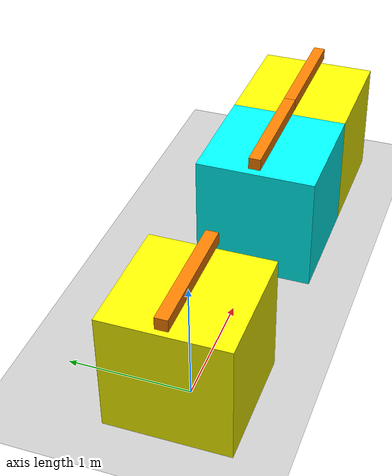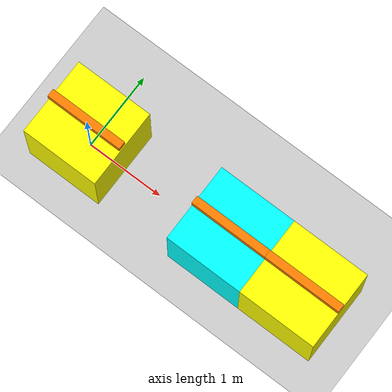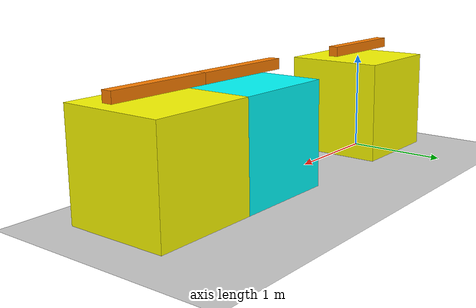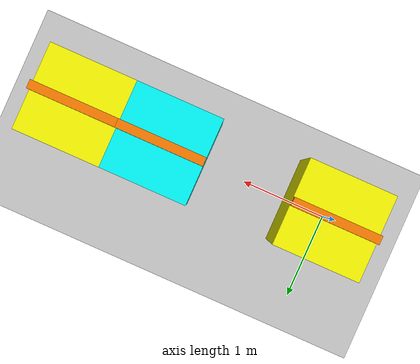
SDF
<?xml version="1.0" ?>

<sdf version="1.9">
  <world name="test_nested_model">
    <physics name="1ms" type="ignore">
      <max_step_size>0.001</max_step_size>
      <real_time_factor>1.0</real_time_factor>
    </physics>

    <plugin filename="gz-sim-physics-system"
      name="gz::sim::systems::Physics">
    </plugin>
    <plugin filename="gz-sim-user-commands-system"
      name="gz::sim::systems::UserCommands">
    </plugin>
    <plugin filename="gz-sim-scene-broadcaster-system"
      name="gz::sim::systems::SceneBroadcaster">
    </plugin>

    <scene>
      <ambient>1.0 1.0 1.0</ambient>
      <background>0.8 0.8 0.8</background>
    </scene>

    <light type="directional" name="sun">
      <cast_shadows>true</cast_shadows>
      <pose>0 0 10 0 0 0</pose>
      <diffuse>0.8 0.8 0.8 1</diffuse>
      <specular>0.8 0.8 0.8 1</specular>
      <attenuation>
        <range>1000</range>
        <constant>0.9</constant>
        <linear>0.01</linear>
        <quadratic>0.001</quadratic>
      </attenuation>
      <direction>-0.5 0.1 -0.9</direction>
    </light>

    <model name="ground_plane">
      <static>true</static>
      <link name="link">
        <collision name="collision">
          <geometry>
            <plane>
              <normal>0 0 1</normal>
              <size>100 100</size>
            </plane>
          </geometry>
        </collision>
        <visual name="visual">
          <geometry>
            <plane>
              <normal>0 0 1</normal>
              <size>100 100</size>
            </plane>
          </geometry>
          <material>
            <ambient>0.8 0.8 0.8 1</ambient>
            <diffuse>0.8 0.8 0.8 1</diffuse>
            <specular>0.8 0.8 0.8 1</specular>
          </material>
        </visual>
      </link>
    </model>

    <!-- model with a position controlled joint -->
    <model name="model1">
      <pose>0 0 0.5 0 0 0</pose>
      <link name="base1_link">
        <inertial>
          <mass>1.0</mass>
          <inertia>
            <ixx>0.166666667</ixx>
            <ixy>0.00</ixy>
            <ixz>0.00</ixz>
            <iyy>0.166666667</iyy>
            <iyz>0.00</iyz>
            <izz>0.166666667</izz>
          </inertia>
        </inertial>
        <visual name="visual">
          <geometry>
            <box>
              <size>1 1 1</size>
            </box>
          </geometry>
          <material>
            <ambient>1 1 0</ambient>
            <diffuse>1 1 0</diffuse>
            <specular>0.1 0.1 0 1</specular>
          </material>
        </visual>
        <collision name="collision">
          <geometry>
            <box>
              <size>1 1 1</size>
            </box>
          </geometry>
        </collision>
      </link>
      <link name="rotor1_link">
        <pose>0 0 0.6 0 0 0</pose>
        <inertial>
          <mass>0.01</mass>
          <inertia>
            <ixx>1.66667E-05</ixx>
            <ixy>0.00</ixy>
            <ixz>0.00</ixz>
            <iyy>0.000841667</iyy>
            <iyz>0.00</iyz>
            <izz>0.000841667</izz>
          </inertia>
        </inertial>
        <visual name="visual">
          <geometry>
            <box>
              <size>1 0.1 0.1</size>
            </box>
          </geometry>
          <material>
            <ambient>1 0.5 0</ambient>
            <diffuse>1 0.5 0</diffuse>
            <specular>0.1 0.1 0 1</specular>
          </material>
        </visual>
        <collision name="collision">
          <geometry>
            <box>
              <size>1 0.1 0.1</size>
            </box>
          </geometry>
        </collision>
      </link>
      <joint name="rotor1_joint" type="revolute">
        <parent>base1_link</parent>
        <child>rotor1_link</child>
        <axis>
          <dynamics>
            <damping>0.5</damping>
          </dynamics>
          <limit>
            <lower>-3.14159265</lower>
            <upper>3.14159265</upper>
          </limit>
          <xyz>0 0 1</xyz>
        </axis>
      </joint>
      <plugin
        filename="gz-sim-joint-position-controller-system"
        name="gz::sim::systems::JointPositionController">
        <joint_name>rotor1_joint</joint_name>
        <topic>rotor1_cmd</topic>
        <p_gain>2</p_gain>
      </plugin>
    </model>

    <!-- nested model with two position controlled joints -->
    <model name="model3">
      <pose>2 0 0.5 0 0 0</pose>
      <link name="base3_link">
        <inertial>
          <mass>1.0</mass>
          <inertia>
            <ixx>0.166666667</ixx>
            <ixy>0.00</ixy>
            <ixz>0.00</ixz>
            <iyy>0.166666667</iyy>
            <iyz>0.00</iyz>
            <izz>0.166666667</izz>
          </inertia>
        </inertial>
        <visual name="visual">
          <geometry>
            <box>
              <size>1 1 1</size>
            </box>
          </geometry>
          <material>
            <ambient>0 1 1</ambient>
            <diffuse>0 1 1</diffuse>
            <specular>0.1 0.1 0 1</specular>
          </material>
        </visual>
        <collision name="collision">
          <geometry>
            <box>
              <size>1 1 1</size>
            </box>
          </geometry>
        </collision>
      </link>
      <link name="rotor3_link">
        <pose>0 0 0.6 0 0 0</pose>
        <inertial>
          <mass>0.01</mass>
          <inertia>
            <ixx>1.66667E-05</ixx>
            <ixy>0.00</ixy>
            <ixz>0.00</ixz>
            <iyy>0.000841667</iyy>
            <iyz>0.00</iyz>
            <izz>0.000841667</izz>
          </inertia>
        </inertial>
        <visual name="visual">
          <geometry>
            <box>
              <size>1 0.1 0.1</size>
            </box>
          </geometry>
          <material>
            <ambient>1 0.5 0</ambient>
            <diffuse>1 0.5 0</diffuse>
            <specular>0.1 0.1 0 1</specular>
          </material>
        </visual>
        <collision name="collision">
          <geometry>
            <box>
              <size>1 0.1 0.1</size>
            </box>
          </geometry>
        </collision>
      </link>
      <joint name="rotor3_joint" type="revolute">
        <parent>base3_link</parent>
        <child>rotor3_link</child>
        <axis>
          <dynamics>
            <damping>0.5</damping>
          </dynamics>
          <limit>
            <lower>-3.14159265</lower>
            <upper>3.14159265</upper>
          </limit>
          <xyz>0 0 1</xyz>
        </axis>
      </joint>
      <plugin
        filename="gz-sim-joint-position-controller-system"
        name="gz::sim::systems::JointPositionController">
        <joint_name>rotor3_joint</joint_name>
        <topic>rotor3_cmd</topic>
        <p_gain>2</p_gain>
      </plugin>
      <model name="model2">
        <pose>1.0 0 0 0 0 0</pose>
        <link name="base2_link">
          <inertial>
            <mass>1.0</mass>
            <inertia>
              <ixx>0.166666667</ixx>
              <ixy>0.00</ixy>
              <ixz>0.00</ixz>
              <iyy>0.166666667</iyy>
              <iyz>0.00</iyz>
              <izz>0.166666667</izz>
            </inertia>
          </inertial>
          <visual name="visual">
            <geometry>
              <box>
                <size>1 1 1</size>
              </box>
            </geometry>
            <material>
              <ambient>1 1 0</ambient>
              <diffuse>1 1 0</diffuse>
              <specular>0.1 0.1 0 1</specular>
            </material>
          </visual>
          <collision name="collision">
            <geometry>
              <box>
                <size>1 1 1</size>
              </box>
            </geometry>
          </collision>
        </link>
        <link name="rotor2_link">
          <pose>0 0 0.6 0 0 0</pose>
          <inertial>
            <mass>0.01</mass>
            <inertia>
              <ixx>1.66667E-05</ixx>
              <ixy>0.00</ixy>
              <ixz>0.00</ixz>
              <iyy>0.000841667</iyy>
              <iyz>0.00</iyz>
              <izz>0.000841667</izz>
            </inertia>
          </inertial>
          <visual name="visual">
            <geometry>
              <box>
                <size>1 0.1 0.1</size>
              </box>
            </geometry>
            <material>
              <ambient>1 0.5 0</ambient>
              <diffuse>1 0.5 0</diffuse>
              <specular>0.1 0.1 0 1</specular>
            </material>
          </visual>
          <collision name="collision">
            <geometry>
              <box>
                <size>1 0.1 0.1</size>
              </box>
            </geometry>
          </collision>
        </link>
        <joint name="rotor2_joint" type="revolute">
          <parent>base2_link</parent>
          <child>rotor2_link</child>
          <axis>
            <dynamics>
              <damping>0.5</damping>
            </dynamics>
            <limit>
              <lower>-3.14159265</lower>
              <upper>3.14159265</upper>
            </limit>
            <xyz>0 0 1</xyz>
          </axis>
        </joint>
        <plugin
          filename="gz-sim-joint-position-controller-system"
          name="gz::sim::systems::JointPositionController">
          <joint_name>rotor2_joint</joint_name>
          <topic>rotor2_cmd</topic>
          <p_gain>2</p_gain>
        </plugin>
      </model>
      <joint name="model2_joint" type="revolute">
        <parent>base3_link</parent>
        <child>model2::base2_link</child>
        <axis>
          <dynamics>
            <damping>0.5</damping>
          </dynamics>
          <limit>
            <lower>0</lower>
            <upper>0</upper>
          </limit>
          <xyz>0 0 1</xyz>
        </axis>
      </joint>
    </model>

  </world>
</sdf>
